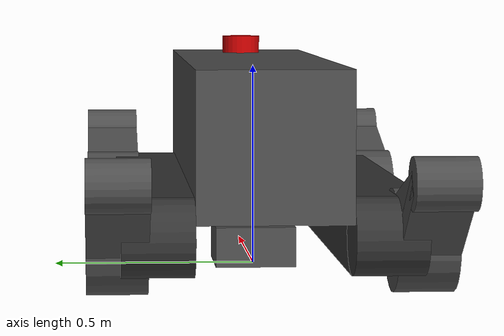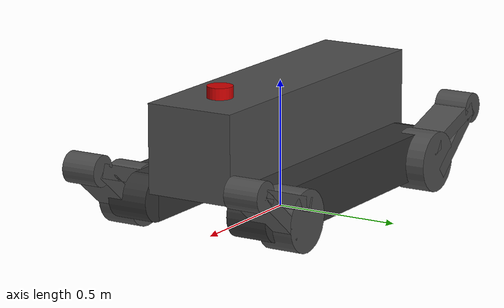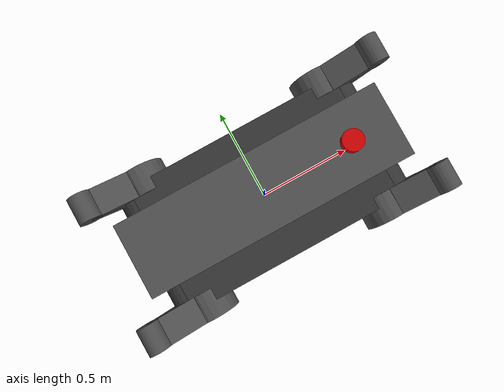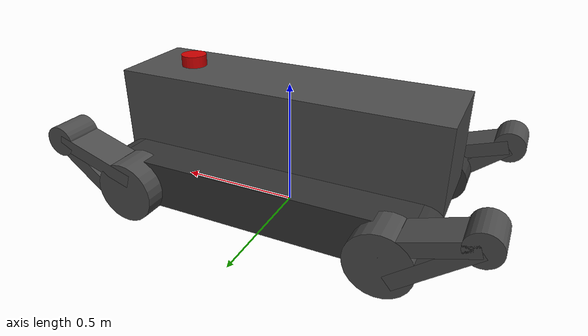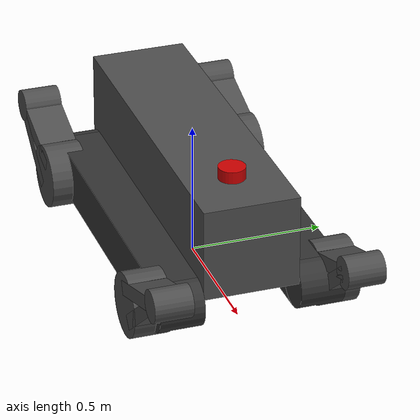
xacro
<?xml version="1.0"?>
<robot name="tracked_vehicle">

  <!-- Materials -->
  <material name="black">
    <color rgba="0.0 0.0 0.0 1.0"/>
  </material>
  <material name="dark_grey">
    <color rgba="0.3 0.3 0.3 1.0"/>
  </material>
  <material name="light_grey">
    <color rgba="0.7 0.7 0.7 1.0"/>
  </material>
  <material name="red">
    <color rgba="0.8 0.0 0.0 1.0"/>
  </material>
  <material name="track_material">
    <color rgba="0.2 0.2 0.2 1.0"/>
  </material>
  <material name="flipper_material">
    <color rgba="0.3 0.3 0.3 1.0"/>
  </material>

  <!-- Base Link -->
  <link name="base_link">
    <visual>
      <origin xyz="0 0 0.05" rpy="0 0 0"/>
      <geometry>
        <box size="0.2 0.2 0.1"/>
      </geometry>
      <material name="dark_grey"/>
    </visual>
    <collision>
      <origin xyz="0 0 0.05" rpy="0 0 0"/>
      <geometry>
        <box size="0.2 0.2 0.1"/>
      </geometry>
    </collision>
    <inertial>
      <origin xyz="0 0 0.05" rpy="0 0 0"/>
      <mass value="5.0"/>
      <inertia ixx="0.0208333" ixy="0" ixz="0" iyy="0.0208333" iyz="0" izz="0.0333333"/>
    </inertial>
  </link>

  <!-- Chassis Link (Main Body) - Original dimensions -->
  <joint name="chassis_joint" type="fixed">
    <parent link="base_link"/>
    <child link="chassis"/>
    <origin xyz="0 0 0.345"/>
  </joint>

  <link name="chassis">
    <visual>
      <origin xyz="0 0 0"/>
      <geometry>
        <box size="1.285 0.355 0.345"/>
      </geometry>
      <material name="dark_grey"/>
    </visual>
    <collision>
      <origin xyz="0 0 0"/>
      <geometry>
        <box size="1.285 0.355 0.345"/>
      </geometry>
    </collision>
    <inertial>
      <origin xyz="0 0 0" rpy="0 0 0"/>
      <mass value="65.0"/>
      <inertia ixx="1.636" ixy="0" ixz="0" iyy="9.638" iyz="0" izz="9.679"/>
    </inertial>
  </link>

  <!-- Left Track - Scaled to original dimensions -->
  <joint name="left_track_joint" type="revolute">
    <parent link="base_link"/>
    <child link="left_track"/>
    <origin xyz="0 0.26 0.12074999999999998"/>
    <axis xyz="0 1 0"/>
    <limit lower="0" upper="0" effort="1000" velocity="0"/>
  </joint>

  <link name="left_track">
    <inertial>
      <origin xyz="0 0 0.0141" rpy="0 0 0"/>
      <mass value="3.0"/>
      <inertia ixx="0.002731" ixy="0" ixz="0" iyy="0.032554" iyz="1.5e-05" izz="0.031391"/>
    </inertial>

    <!-- Main track body - scaled to original dimensions -->
    <visual name="left_track_body">
      <origin xyz="0 0 0.01855" rpy="1.5708 0 1.5708"/>
      <geometry>
        <box size="0.165 0.18094 1.1565"/>
      </geometry>
      <material name="track_material"/>
    </visual>
    <collision name="left_track_body">
      <origin xyz="0 0 0.01855" rpy="1.5708 0 1.5708"/>
      <geometry>
        <box size="0.165 0.18094 1.1565"/>
      </geometry>
    </collision>

    <!-- Front cylinder -->
    <visual name="left_track_front">
      <origin xyz="0.578 0 0.01855" rpy="1.5708 0 0"/>
      <geometry>
        <cylinder length="0.165" radius="0.09047"/>
      </geometry>
      <material name="track_material"/>
    </visual>
    <collision name="left_track_front">
      <origin xyz="0.578 0 0.01855" rpy="1.5708 0 0"/>
      <geometry>
        <cylinder length="0.165" radius="0.09047"/>
      </geometry>
    </collision>

    <!-- Rear cylinder -->
    <visual name="left_track_rear">
      <origin xyz="-0.578 0 0.01855" rpy="1.5708 0 0"/>
      <geometry>
        <cylinder length="0.165" radius="0.09047"/>
      </geometry>
      <material name="track_material"/>
    </visual>
    <collision name="left_track_rear">
      <origin xyz="-0.578 0 0.01855" rpy="1.5708 0 0"/>
      <geometry>
        <cylinder length="0.165" radius="0.09047"/>
      </geometry>
    </collision>
  </link>

  <!-- Right Track - Scaled to original dimensions -->
  <joint name="right_track_joint" type="revolute">
    <parent link="base_link"/>
    <child link="right_track"/>
    <origin xyz="0 -0.26 0.12074999999999998"/>
    <axis xyz="0 1 0"/>
    <limit lower="0" upper="0" effort="1000" velocity="0"/>
  </joint>

  <link name="right_track">
    <inertial>
      <origin xyz="0 0 0.0141" rpy="0 0 0"/>
      <mass value="3.0"/>
      <inertia ixx="0.002731" ixy="0" ixz="0" iyy="0.032554" iyz="1.5e-05" izz="0.031391"/>
    </inertial>

    <!-- Main track body - scaled to original dimensions -->
    <visual name="right_track_body">
      <origin xyz="0 0 0.01855" rpy="1.5708 0 1.5708"/>
      <geometry>
        <box size="0.165 0.18094 1.1565"/>
      </geometry>
      <material name="track_material"/>
    </visual>
    <collision name="right_track_body">
      <origin xyz="0 0 0.01855" rpy="1.5708 0 1.5708"/>
      <geometry>
        <box size="0.165 0.18094 1.1565"/>
      </geometry>
    </collision>

    <!-- Front cylinder -->
    <visual name="right_track_front">
      <origin xyz="0.578 0 0.01855" rpy="1.5708 0 0"/>
      <geometry>
        <cylinder length="0.165" radius="0.09047"/>
      </geometry>
      <material name="track_material"/>
    </visual>
    <collision name="right_track_front">
      <origin xyz="0.578 0 0.01855" rpy="1.5708 0 0"/>
      <geometry>
        <cylinder length="0.165" radius="0.09047"/>
      </geometry>
    </collision>

    <!-- Rear cylinder -->
    <visual name="right_track_rear">
      <origin xyz="-0.578 0 0.01855" rpy="1.5708 0 0"/>
      <geometry>
        <cylinder length="0.165" radius="0.09047"/>
      </geometry>
      <material name="track_material"/>
    </visual>
    <collision name="right_track_rear">
      <origin xyz="-0.578 0 0.01855" rpy="1.5708 0 0"/>
      <geometry>
        <cylinder length="0.165" radius="0.09047"/>
      </geometry>
    </collision>
  </link>

  <!-- Front Left Flipper - Scaled and positioned for original dimensions -->
  <joint name="front_left_flipper_joint" type="revolute">
    <parent link="base_link"/>
    <child link="front_left_flipper"/>
    <origin xyz="0.5 0.35 0.12" rpy="0 -0.5 0"/>
    <axis xyz="0 1 0"/>
    <limit lower="-1.57" upper="1.57" effort="100" velocity="1.0"/>
    <dynamics damping="0.1" friction="0.1"/>
  </joint>

  <link name="front_left_flipper">
    <inertial>
      <origin xyz="0.08 0 0" rpy="0 0 0"/>
      <mass value="5.0"/>
      <inertia ixx="0.0017491" ixy="2.8512e-07" ixz="0.0018277" iyy="0.012277" iyz="-3.6288e-07" izz="0.010941"/>
    </inertial>

    <!-- Large wheel -->
    <visual name="front_left_flipper_wheel">
      <origin xyz="0 0 0" rpy="1.5708 0 0"/>
      <geometry>
        <cylinder length="0.14" radius="0.12"/>
      </geometry>
      <material name="flipper_material"/>
    </visual>
    <collision name="front_left_flipper_wheel">
      <origin xyz="0 0 0" rpy="1.5708 0 0"/>
      <geometry>
        <cylinder length="0.14" radius="0.12"/>
      </geometry>
    </collision>

    <!-- Small wheel -->
    <visual name="front_left_flipper_small_wheel">
      <origin xyz="0.33 0 0" rpy="1.5708 0 0"/>
      <geometry>
        <cylinder length="0.14" radius="0.06"/>
      </geometry>
      <material name="flipper_material"/>
    </visual>
    <collision name="front_left_flipper_small_wheel">
      <origin xyz="0.33 0 0" rpy="1.5708 0 0"/>
      <geometry>
        <cylinder length="0.14" radius="0.06"/>
      </geometry>
    </collision>

    <!-- Track bars -->
    <visual name="front_left_flipper_top_bar">
      <origin xyz="0.165 0 0.0325" rpy="0 0.184162 0"/>
      <geometry>
        <box size="0.33 0.14 0.055"/>
      </geometry>
      <material name="flipper_material"/>
    </visual>
    <collision name="front_left_flipper_top_bar">
      <origin xyz="0.165 0 0.0325" rpy="0 0.184162 0"/>
      <geometry>
        <box size="0.33 0.14 0.055"/>
      </geometry>
    </collision>

    <visual name="front_left_flipper_bottom_bar">
      <origin xyz="0.165 0 -0.0325" rpy="0 -0.184162 0"/>
      <geometry>
        <box size="0.33 0.14 0.055"/>
      </geometry>
      <material name="flipper_material"/>
    </visual>
    <collision name="front_left_flipper_bottom_bar">
      <origin xyz="0.165 0 -0.0325" rpy="0 -0.184162 0"/>
      <geometry>
        <box size="0.33 0.14 0.055"/>
      </geometry>
    </collision>
  </link>

  <!-- Rear Left Flipper -->
  <joint name="rear_left_flipper_joint" type="revolute">
    <parent link="base_link"/>
    <child link="rear_left_flipper"/>
    <origin xyz="-0.5 0.35 0.12" rpy="3.14159 -0.5 3.14159"/>
    <axis xyz="0 1 0"/>
    <limit lower="-1.57" upper="1.57" effort="100" velocity="1.0"/>
    <dynamics damping="0.1" friction="0.1"/>
  </joint>

  <link name="rear_left_flipper">
    <inertial>
      <origin xyz="0.08 0 0" rpy="0 0 0"/>
      <mass value="5.0"/>
      <inertia ixx="0.0017491" ixy="2.8512e-07" ixz="0.0018277" iyy="0.012277" iyz="-3.6288e-07" izz="0.010941"/>
    </inertial>

    <visual name="rear_left_flipper_wheel">
      <origin xyz="0 0 0" rpy="1.5708 0 0"/>
      <geometry>
        <cylinder length="0.14" radius="0.12"/>
      </geometry>
      <material name="flipper_material"/>
    </visual>
    <collision name="rear_left_flipper_wheel">
      <origin xyz="0 0 0" rpy="1.5708 0 0"/>
      <geometry>
        <cylinder length="0.14" radius="0.12"/>
      </geometry>
    </collision>

    <visual name="rear_left_flipper_small_wheel">
      <origin xyz="0.33 0 0" rpy="1.5708 0 0"/>
      <geometry>
        <cylinder length="0.14" radius="0.06"/>
      </geometry>
      <material name="flipper_material"/>
    </visual>
    <collision name="rear_left_flipper_small_wheel">
      <origin xyz="0.33 0 0" rpy="1.5708 0 0"/>
      <geometry>
        <cylinder length="0.14" radius="0.06"/>
      </geometry>
    </collision>

    <visual name="rear_left_flipper_top_bar">
      <origin xyz="0.165 0 0.0325" rpy="0 0.184162 0"/>
      <geometry>
        <box size="0.33 0.14 0.055"/>
      </geometry>
      <material name="flipper_material"/>
    </visual>
    <collision name="rear_left_flipper_top_bar">
      <origin xyz="0.165 0 0.0325" rpy="0 0.184162 0"/>
      <geometry>
        <box size="0.33 0.14 0.055"/>
      </geometry>
    </collision>

    <visual name="rear_left_flipper_bottom_bar">
      <origin xyz="0.165 0 -0.0325" rpy="0 -0.184162 0"/>
      <geometry>
        <box size="0.33 0.14 0.055"/>
      </geometry>
      <material name="flipper_material"/>
    </visual>
    <collision name="rear_left_flipper_bottom_bar">
      <origin xyz="0.165 0 -0.0325" rpy="0 -0.184162 0"/>
      <geometry>
        <box size="0.33 0.14 0.055"/>
      </geometry>
    </collision>
  </link>

  <!-- Front Right Flipper -->
  <joint name="front_right_flipper_joint" type="revolute">
    <parent link="base_link"/>
    <child link="front_right_flipper"/>
    <origin xyz="0.5 -0.35 0.12" rpy="3.14159 0.5 3.14159"/>
    <axis xyz="0 1 0"/>
    <limit lower="-1.57" upper="1.57" effort="100" velocity="1.0"/>
    <dynamics damping="0.1" friction="0.1"/>
  </joint>

  <link name="front_right_flipper">
    <inertial>
      <origin xyz="-0.08 0 0" rpy="0 0 0"/>
      <mass value="5.0"/>
      <inertia ixx="0.0017491" ixy="2.8512e-07" ixz="0.0018277" iyy="0.012277" iyz="-3.6288e-07" izz="0.010941"/>
    </inertial>

    <visual name="front_right_flipper_wheel">
      <origin xyz="0 0 0" rpy="1.5708 0 0"/>
      <geometry>
        <cylinder length="0.14" radius="0.12"/>
      </geometry>
      <material name="flipper_material"/>
    </visual>
    <collision name="front_right_flipper_wheel">
      <origin xyz="0 0 0" rpy="1.5708 0 0"/>
      <geometry>
        <cylinder length="0.14" radius="0.12"/>
      </geometry>
    </collision>

    <visual name="front_right_flipper_small_wheel">
      <origin xyz="-0.33 0 0" rpy="1.5708 0 0"/>
      <geometry>
        <cylinder length="0.14" radius="0.06"/>
      </geometry>
      <material name="flipper_material"/>
    </visual>
    <collision name="front_right_flipper_small_wheel">
      <origin xyz="-0.33 0 0" rpy="1.5708 0 0"/>
      <geometry>
        <cylinder length="0.14" radius="0.06"/>
      </geometry>
    </collision>

    <visual name="front_right_flipper_top_bar">
      <origin xyz="-0.165 0 0.0325" rpy="0 0.184162 3.14159"/>
      <geometry>
        <box size="0.33 0.14 0.055"/>
      </geometry>
      <material name="flipper_material"/>
    </visual>
    <collision name="front_right_flipper_top_bar">
      <origin xyz="-0.165 0 0.0325" rpy="0 0.184162 3.14159"/>
      <geometry>
        <box size="0.33 0.14 0.055"/>
      </geometry>
    </collision>

    <visual name="front_right_flipper_bottom_bar">
      <origin xyz="-0.165 0 -0.0325" rpy="0 -0.184162 3.14159"/>
      <geometry>
        <box size="0.33 0.14 0.055"/>
      </geometry>
      <material name="flipper_material"/>
    </visual>
    <collision name="front_right_flipper_bottom_bar">
      <origin xyz="-0.165 0 -0.0325" rpy="0 -0.184162 3.14159"/>
      <geometry>
        <box size="0.33 0.14 0.055"/>
      </geometry>
    </collision>
  </link>

  <!-- Rear Right Flipper -->
  <joint name="rear_right_flipper_joint" type="revolute">
    <parent link="base_link"/>
    <child link="rear_right_flipper"/>
    <origin xyz="-0.5 -0.35 0.12" rpy="0 0.5 0"/>
    <axis xyz="0 1 0"/>
    <limit lower="-1.57" upper="1.57" effort="100" velocity="1.0"/>
    <dynamics damping="0.1" friction="0.1"/>
  </joint>

  <link name="rear_right_flipper">
    <inertial>
      <origin xyz="-0.08 0 0" rpy="0 0 0"/>
      <mass value="5.0"/>
      <inertia ixx="0.0017491" ixy="2.8512e-07" ixz="0.0018277" iyy="0.012277" iyz="-3.6288e-07" izz="0.010941"/>
    </inertial>

    <visual name="rear_right_flipper_wheel">
      <origin xyz="0 0 0" rpy="1.5708 0 0"/>
      <geometry>
        <cylinder length="0.14" radius="0.12"/>
      </geometry>
      <material name="flipper_material"/>
    </visual>
    <collision name="rear_right_flipper_wheel">
      <origin xyz="0 0 0" rpy="1.5708 0 0"/>
      <geometry>
        <cylinder length="0.14" radius="0.12"/>
      </geometry>
    </collision>

    <visual name="rear_right_flipper_small_wheel">
      <origin xyz="-0.33 0 0" rpy="1.5708 0 0"/>
      <geometry>
        <cylinder length="0.14" radius="0.06"/>
      </geometry>
      <material name="flipper_material"/>
    </visual>
    <collision name="rear_right_flipper_small_wheel">
      <origin xyz="-0.33 0 0" rpy="1.5708 0 0"/>
      <geometry>
        <cylinder length="0.14" radius="0.06"/>
      </geometry>
    </collision>

    <visual name="rear_right_flipper_top_bar">
      <origin xyz="-0.165 0 0.0325" rpy="0 0.184162 3.14159"/>
      <geometry>
        <box size="0.33 0.14 0.055"/>
      </geometry>
      <material name="flipper_material"/>
    </visual>
    <collision name="rear_right_flipper_top_bar">
      <origin xyz="-0.165 0 0.0325" rpy="0 0.184162 3.14159"/>
      <geometry>
        <box size="0.33 0.14 0.055"/>
      </geometry>
    </collision>

    <visual name="rear_right_flipper_bottom_bar">
      <origin xyz="-0.165 0 -0.0325" rpy="0 -0.184162 3.14159"/>
      <geometry>
        <box size="0.33 0.14 0.055"/>
      </geometry>
      <material name="flipper_material"/>
    </visual>
    <collision name="rear_right_flipper_bottom_bar">
      <origin xyz="-0.165 0 -0.0325" rpy="0 -0.184162 3.14159"/>
      <geometry>
        <box size="0.33 0.14 0.055"/>
      </geometry>
    </collision>
  </link>

  <!-- Velodyne Lidar -->
  <joint name="velodyne_joint" type="fixed">
    <parent link="chassis"/>
    <child link="velodyne"/>
    <origin xyz="0.4283333333333333 0 0.1925"/>
  </joint>

  <link name="velodyne">
    <visual>
      <geometry>
        <cylinder length="0.05" radius="0.05"/>
      </geometry>
      <material name="red"/>
    </visual>
    <collision>
      <origin xyz="0.015 0 -0.0065"/>
      <geometry>
        <cylinder length="0.0315" radius="0.055"/>
      </geometry>
    </collision>
    <inertial>
      <origin xyz="0 0 0" rpy="0 0 0"/>
      <mass value="5.0"/>
      <inertia ixx="0.00354167" ixy="0" ixz="0" iyy="0.00354167" iyz="0" izz="0.00625"/>
    </inertial>
  </link>

  <!-- IMU -->
  <joint name="imu_joint" type="fixed">
    <parent link="chassis"/>
    <child link="imu_link"/>
    <origin xyz="0.4283333333333333 0 0.1925"/>
  </joint>

  <link name="imu_link">
    <inertial>
      <origin xyz="0 0 0" rpy="0 0 0"/>
      <mass value="0.01"/>
      <inertia ixx="1e-06" ixy="0" ixz="0" iyy="1e-06" iyz="0" izz="1e-06"/>
    </inertial>
  </link>

  <!-- Gazebo Materials and Friction -->
  <gazebo reference="chassis">
    <mu1>2.0</mu1>
    <mu2>2.0</mu2>
    <self_collide>false</self_collide>
  </gazebo>

  <gazebo reference="left_track">
    <mu1>0.7</mu1>
    <mu2>150</mu2>
    <fdir1>0 1 0</fdir1>
    <self_collide>false</self_collide>
  </gazebo>

  <gazebo reference="right_track">
    <mu1>0.7</mu1>
    <mu2>150</mu2>
    <fdir1>0 1 0</fdir1>
    <self_collide>false</self_collide>
  </gazebo>

  <gazebo reference="front_left_flipper">
    <material>Gazebo/DarkGrey</material>
    <mu1>0.7</mu1>
    <mu2>150</mu2>
    <fdir1>0 1 0</fdir1>
    <self_collide>true</self_collide>
    <max_contacts>20</max_contacts>
  </gazebo>

  <gazebo reference="rear_left_flipper">
    <material>Gazebo/DarkGrey</material>
    <mu1>0.7</mu1>
    <mu2>150</mu2>
    <fdir1>0 1 0</fdir1>
    <self_collide>true</self_collide>
    <max_contacts>20</max_contacts>
  </gazebo>

  <gazebo reference="front_right_flipper">
    <material>Gazebo/DarkGrey</material>
    <mu1>0.7</mu1>
    <mu2>150</mu2>
    <fdir1>0 1 0</fdir1>
    <self_collide>true</self_collide>
    <max_contacts>20</max_contacts>
  </gazebo>

  <gazebo reference="rear_right_flipper">
    <material>Gazebo/DarkGrey</material>
    <mu1>0.7</mu1>
    <mu2>150</mu2>
    <fdir1>0 1 0</fdir1>
    <self_collide>true</self_collide>
    <max_contacts>20</max_contacts>
  </gazebo>

  <!-- Prevent fixed joint lumping for chassis -->
  <gazebo reference="chassis_joint">
    <preserveFixedJoint>true</preserveFixedJoint>
  </gazebo>

  <!-- IMU Sensor -->
  <gazebo reference="imu_link">
    <sensor name="tb3_imu" type="imu">
      <always_on>true</always_on>
      <update_rate>200</update_rate>
      <imu>
        <angular_velocity>
          <x>
            <noise type="gaussian">
              <mean>0.0</mean>
              <stddev>2e-4</stddev>
            </noise>
          </x>
          <y>
            <noise type="gaussian">
              <mean>0.0</mean>
              <stddev>2e-4</stddev>
            </noise>
          </y>
          <z>
            <noise type="gaussian">
              <mean>0.0</mean>
              <stddev>2e-4</stddev>
            </noise>
          </z>
        </angular_velocity>
        <linear_acceleration>
          <x>
            <noise type="gaussian">
              <mean>0.0</mean>
              <stddev>1.7e-2</stddev>
            </noise>
          </x>
          <y>
            <noise type="gaussian">
              <mean>0.0</mean>
              <stddev>1.7e-2</stddev>
            </noise>
          </y>
          <z>
            <noise type="gaussian">
              <mean>0.0</mean>
              <stddev>1.7e-2</stddev>
            </noise>
          </z>
        </linear_acceleration>
      </imu>
    </sensor>
  </gazebo>

  <!-- Velodyne Lidar -->
  <gazebo reference="velodyne">
    <sensor name="velodyne" type="gpu_lidar">
      <update_rate>10</update_rate>
      <visualize>true</visualize>
      <always_on>true</always_on>
      <gz_frame_id>velodyne</gz_frame_id>
      <topic>velodyne</topic>
      <lidar>
        <scan>
          <horizontal>
            <samples>512</samples>
            <resolution>1</resolution>
            <min_angle>-3.14159265359</min_angle>
            <max_angle>3.14159265359</max_angle>
          </horizontal>
          <vertical>
            <samples>32</samples>
            <resolution>1</resolution>
            <min_angle>-0.55</min_angle>
            <max_angle>0.26</max_angle>
          </vertical>
        </scan>
        <range>
          <min>0.2</min>
          <max>131.0</max>
          <resolution>0.01</resolution>
        </range>
      </lidar>
    </sensor>
  </gazebo>

  <!-- Tracked Vehicle Plugin -->
  <gazebo>
    <plugin name="gz::sim::systems::TrackedVehicle" filename="gz-sim-tracked-vehicle-system">
      <left_track><link>left_track</link></left_track>
      <left_track><link>front_left_flipper</link></left_track>
      <left_track><link>rear_left_flipper</link></left_track>
      <right_track><link>right_track</link></right_track>
      <right_track><link>front_right_flipper</link></right_track>
      <right_track><link>rear_right_flipper</link></right_track>
      <tracks_separation>0.4</tracks_separation>
      <tracks_height>0.18094</tracks_height>
      <steering_efficiency>0.5</steering_efficiency>
      <topic>/cmd_vel</topic>
      <odom_topic>/odom</odom_topic>
      <tf_topic>/tf</tf_topic>
      <frame_id>odom</frame_id>
      <child_frame_id>base_link</child_frame_id>
    </plugin>
  </gazebo>

  <!-- Track Controllers -->
  <gazebo>
    <plugin name='gz::sim::systems::TrackController' filename='gz-sim-track-controller-system'>
      <link>left_track</link>
      <min_velocity>-1.0</min_velocity>
      <max_velocity>1.0</max_velocity>
      <debug>1</debug>
    </plugin>
  </gazebo>

  <gazebo>
    <plugin name='gz::sim::systems::TrackController' filename='gz-sim-track-controller-system'>
      <link>right_track</link>
      <min_velocity>-1.0</min_velocity>
      <max_velocity>1.0</max_velocity>
      <debug>1</debug>
    </plugin>
  </gazebo>

  <!-- Track Controllers for Flippers -->
  <gazebo>
    <plugin name='gz::sim::systems::TrackController' filename='gz-sim-track-controller-system'>
      <link>front_left_flipper</link>
      <min_velocity>-1.0</min_velocity>
      <max_velocity>1.0</max_velocity>
    </plugin>
  </gazebo>

  <gazebo>
    <plugin name='gz::sim::systems::TrackController' filename='gz-sim-track-controller-system'>
      <link>rear_left_flipper</link>
      <min_velocity>-1.0</min_velocity>
      <max_velocity>1.0</max_velocity>
    </plugin>
  </gazebo>

  <gazebo>
    <plugin name='gz::sim::systems::TrackController' filename='gz-sim-track-controller-system'>
      <link>front_right_flipper</link>
      <min_velocity>-1.0</min_velocity>
      <max_velocity>1.0</max_velocity>
    </plugin>
  </gazebo>

  <gazebo>
    <plugin name='gz::sim::systems::TrackController' filename='gz-sim-track-controller-system'>
      <link>rear_right_flipper</link>
      <min_velocity>-1.0</min_velocity>
      <max_velocity>1.0</max_velocity>
    </plugin>
  </gazebo>

  <!-- Joint State Publisher -->
  <gazebo>
    <plugin filename="gz-sim-joint-state-publisher-system" name="gz::sim::systems::JointStatePublisher">
      <topic>joint_states</topic>
      <update_rate>30</update_rate>
      <joint_name>front_left_flipper_joint</joint_name>
      <joint_name>rear_left_flipper_joint</joint_name>
      <joint_name>front_right_flipper_joint</joint_name>
      <joint_name>rear_right_flipper_joint</joint_name>
      <joint_name>left_track_joint</joint_name>
      <joint_name>right_track_joint</joint_name>
    </plugin>
  </gazebo>

</robot>
